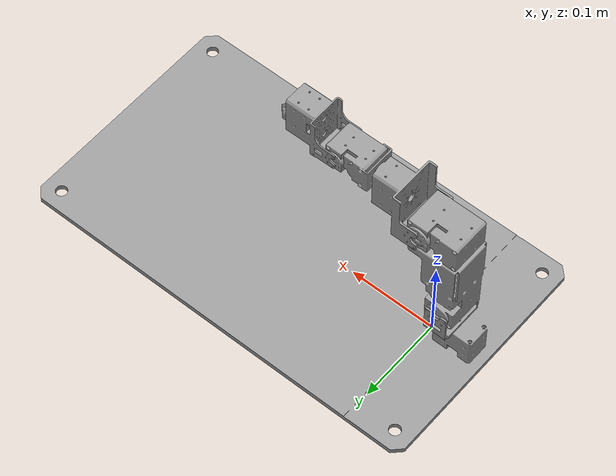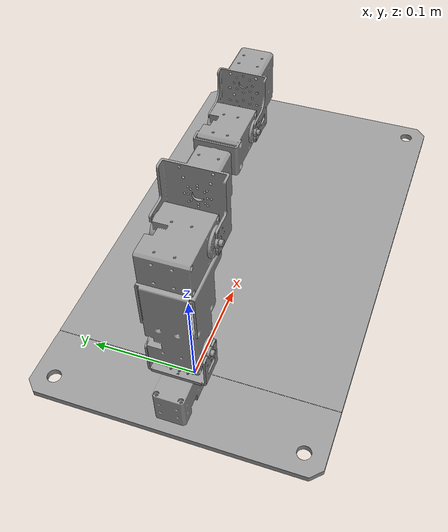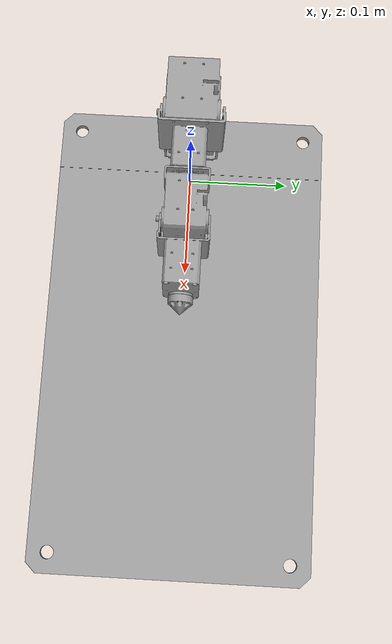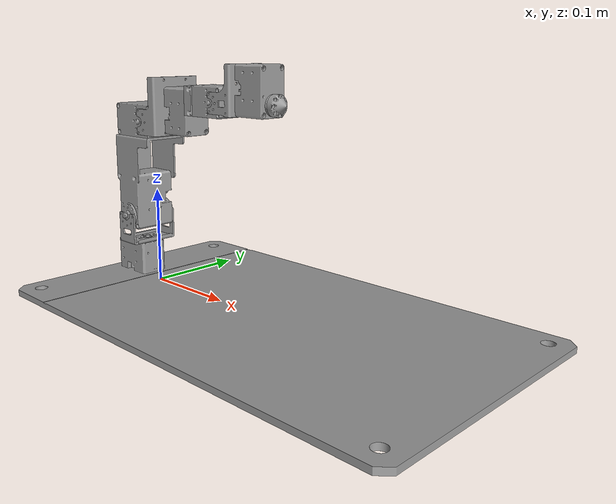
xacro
<?xml version="1.0"?>
<!-- ROBOTIS Manipulator-X -->
<robot name="robotis_manipulator_x" xmlns:xacro="http://www.ros.org/wiki/xacro">

  <!-- some parameters -->
  <xacro:property name="pi" value="3.141592654" />

  <!-- Import all Gazebo-customization elements, including Gazebo colors -->
  <xacro:include filename="$(find manipulator_x_description)/urdf/manipulator_x.gazebo" />
  <!-- Import Rviz colors -->
  <xacro:include filename="$(find manipulator_x_description)/urdf/materials.xacro" />

  <!-- World -->
  <link name="world">
  </link>

  <!-- World fixed joint-->
  <joint name="world_fixed" type="fixed">
    <origin xyz="0 0 0" rpy="0 0 0"/>
    <parent link="world"/>
    <child link="base"/>
  </joint>

  <!-- Base Plate -->
  <link name="base">
    <collision>
      <origin xyz="0 0 0" rpy="0 0 ${-0.5*pi}"/>
      <geometry>
        <mesh filename="package://manipulator_x_description/meshes/assm_mpx540_6x_base.stl" scale="0.001 0.001 0.001"/>
      </geometry>
    </collision>

    <visual>
      <origin xyz="0 0 0" rpy="0 0 ${-0.5*pi}"/>
      <geometry>
        <mesh filename="package://manipulator_x_description/meshes/assm_mpx540_6x_base.stl" scale="0.001 0.001 0.001"/>
      </geometry>
      <material name="grey"/>
    </visual>

    <inertial>
      <origin xyz="0 0 0" rpy="0 0 0"/>
      <mass value="1.0"/>
      <inertia ixx="1.0" ixy="0.0" ixz="0" iyy="1.0" iyz="0.0" izz="1.0" />
    </inertial>
  </link>

  <!-- Joint 1 -->
  <joint name="joint1" type="revolute">
    <parent link="base"/>
    <child link="link2"/>
    <origin xyz="-0.021 0.0 0.023" rpy="0 0 0"/>
    <axis xyz="0 0 1"/>
    <limit velocity="6.5" effort="1000" lower="${-8.0*pi/9.0}" upper="${8.0*pi/9.0}" />
    <dynamics damping="0.1"/>
  </joint>

  <transmission name="tran1">
    <type>transmission_interface/SimpleTransmission</type>
    <joint name="joint1">
      <hardwareInterface>EffortJointInterface</hardwareInterface>
    </joint>
    <actuator name="motor1">
      <hardwareInterface>EffortJointInterface</hardwareInterface>
      <mechanicalReduction>1</mechanicalReduction>
    </actuator>
  </transmission>

  <!-- Link 2 -->
  <link name="link2">
    <collision>
      <origin xyz="0 0 0" rpy="0 0 ${-0.5*pi}"/>
      <geometry>
        <mesh filename="package://manipulator_x_description/meshes/assm_mpx540_6x_0.stl" scale="0.001 0.001 0.001"/>
      </geometry>
    </collision>

    <visual>
      <origin xyz="0 0 0" rpy="0 0 ${-0.5*pi}"/>
      <geometry>
        <mesh filename="package://manipulator_x_description/meshes/assm_mpx540_6x_0.stl" scale="0.001 0.001 0.001"/>
      </geometry>
      <material name="grey"/>
    </visual>

    <inertial>
      <origin xyz="0 0 0" rpy="0 0 0"/>
      <mass value="1.0"/>
      <inertia ixx="1.0" ixy="0.0" ixz="0" iyy="1.0" iyz="0.0" izz="1.0" />
    </inertial>
  </link>

  <!-- Joint 2 -->
  <joint name="joint2" type="revolute">
    <parent link="link2"/>
    <child link="link3"/>
    <origin xyz="0.0 0.0 0.0495" rpy="0 0 0"/>
    <axis xyz="0 1 0"/>
    <limit velocity="6.5" effort="1000" lower="${-8.0*pi/9.0}" upper="${8.0*pi/9.0}" />
    <dynamics damping="0.1"/>
  </joint>

  <transmission name="tran2">
    <type>transmission_interface/SimpleTransmission</type>
    <joint name="joint2">
      <hardwareInterface>EffortJointInterface</hardwareInterface>
    </joint>
    <actuator name="motor2">
      <hardwareInterface>EffortJointInterface</hardwareInterface>
      <mechanicalReduction>1</mechanicalReduction>
    </actuator>
  </transmission>

  <!-- Link 3 -->
  <link name="link3">
    <collision>
      <origin xyz="0 0 0" rpy="${-0.5*pi} 0 ${pi}"/>
      <geometry>
        <mesh filename="package://manipulator_x_description/meshes/assm_mpx540_6x_1.stl" scale="0.001 0.001 0.001"/>
      </geometry>
    </collision>

    <visual>
      <origin xyz="0 0 0" rpy="${-0.5*pi} 0 ${pi}"/>
      <geometry>
        <mesh filename="package://manipulator_x_description/meshes/assm_mpx540_6x_1.stl" scale="0.001 0.001 0.001"/>
      </geometry>
      <material name="grey"/>
    </visual>

    <inertial>
      <origin xyz="0 0 0" rpy="0 0 0"/>
      <mass value="1.0"/>
      <inertia ixx="1.0" ixy="0.0" ixz="0" iyy="1.0" iyz="0.0" izz="1.0" />
    </inertial>
  </link>

  <!-- Joint 3 -->
  <joint name="joint3" type="revolute">
    <parent link="link3"/>
    <child link="link4"/>
    <origin xyz="0.029 0.0 0.102" rpy="0 0 0"/>
    <axis xyz="0 -1 0"/>
    <limit velocity="6.5" effort="1000" lower="${-8.0*pi/9.0}" upper="${8.0*pi/9.0}" />
    <dynamics damping="0.1"/>
  </joint>

  <transmission name="tran3">
    <type>transmission_interface/SimpleTransmission</type>
    <joint name="joint3">
      <hardwareInterface>EffortJointInterface</hardwareInterface>
    </joint>
    <actuator name="motor3">
      <hardwareInterface>EffortJointInterface</hardwareInterface>
      <mechanicalReduction>1</mechanicalReduction>
    </actuator>
  </transmission>

  <!-- Link 4 -->
  <link name="link4">
    <collision>
      <origin xyz="0 0 0" rpy="0 0 ${-0.5*pi}"/>
      <geometry>
        <mesh filename="package://manipulator_x_description/meshes/assm_mpx540_6x_2.stl" scale="0.001 0.001 0.001"/>
      </geometry>
    </collision>

    <visual>
      <origin xyz="0 0 0" rpy="0 0 ${-0.5*pi}"/>
      <geometry>
        <mesh filename="package://manipulator_x_description/meshes/assm_mpx540_6x_2.stl" scale="0.001 0.001 0.001"/>
      </geometry>
      <material name="grey"/>
    </visual>

    <inertial>
      <origin xyz="0 0 0" rpy="0 0 0"/>
      <mass value="1.0"/>
      <inertia ixx="1.0" ixy="0.0" ixz="0" iyy="1.0" iyz="0.0" izz="1.0" />
    </inertial>
  </link>

  <!-- Joint 4 -->
  <joint name="joint4" type="revolute">
    <parent link="link4"/>
    <child link="link5"/>
    <origin xyz="0.045 0.0 0.024" rpy="0 0 0"/>
    <axis xyz="1 0 0"/>
    <limit velocity="6.5" effort="1000" lower="${-8.0*pi/9.0}" upper="${8.0*pi/9.0}" />
    <dynamics damping="0.1"/>
  </joint>

  <transmission name="tran4">
    <type>transmission_interface/SimpleTransmission</type>
    <joint name="joint4">
      <hardwareInterface>EffortJointInterface</hardwareInterface>
    </joint>
    <actuator name="motor4">
      <hardwareInterface>EffortJointInterface</hardwareInterface>
      <mechanicalReduction>1</mechanicalReduction>
    </actuator>
  </transmission>

  <!-- Link 5 -->
  <link name="link5">
    <collision>
      <origin xyz="0 0 0" rpy="0 0 ${-0.5*pi}"/>
      <geometry>
        <mesh filename="package://manipulator_x_description/meshes/assm_mpx540_6x_3.stl" scale="0.001 0.001 0.001"/>
      </geometry>
    </collision>

    <visual>
      <origin xyz="0 0 0" rpy="0 0 ${-0.5*pi}"/>
      <geometry>
        <mesh filename="package://manipulator_x_description/meshes/assm_mpx540_6x_3.stl" scale="0.001 0.001 0.001"/>
      </geometry>
      <material name="grey"/>
    </visual>

    <inertial>
      <origin xyz="0 0 0" rpy="0 0 0"/>
      <mass value="1.0"/>
      <inertia ixx="1.0" ixy="0.0" ixz="0" iyy="1.0" iyz="0.0" izz="1.0" />
    </inertial>
  </link>

  <!-- Joint 5 -->
  <joint name="joint5" type="revolute">
    <parent link="link5"/>
    <child link="link6"/>
    <origin xyz="0.0595 0.0 0.0" rpy="0 0 0"/>
    <axis xyz="0 -1 0"/>
    <limit velocity="6.5" effort="1000" lower="${-8.0*pi/9.0}" upper="${8.0*pi/9.0}" />
    <dynamics damping="0.1"/>
  </joint>

  <transmission name="tran5">
    <type>transmission_interface/SimpleTransmission</type>
    <joint name="joint5">
      <hardwareInterface>EffortJointInterface</hardwareInterface>
    </joint>
    <actuator name="motor5">
      <hardwareInterface>EffortJointInterface</hardwareInterface>
      <mechanicalReduction>1</mechanicalReduction>
    </actuator>
  </transmission>

  <!-- Link 6 -->
  <link name="link6">
    <collision>
      <origin xyz="0 0 0" rpy="0 0 ${-0.5*pi}"/>
      <geometry>
        <mesh filename="package://manipulator_x_description/meshes/assm_mpx540_6x_4.stl" scale="0.001 0.001 0.001"/>
      </geometry>
    </collision>

    <visual>
      <origin xyz="0 0 0" rpy="0 0 ${-0.5*pi}"/>
      <geometry>
        <mesh filename="package://manipulator_x_description/meshes/assm_mpx540_6x_4.stl" scale="0.001 0.001 0.001"/>
      </geometry>
      <material name="grey"/>
    </visual>

    <inertial>
      <origin xyz="0 0 0" rpy="0 0 0"/>
      <mass value="1.0"/>
      <inertia ixx="1.0" ixy="0.0" ixz="0" iyy="1.0" iyz="0.0" izz="1.0" />
    </inertial>
  </link>

  <!-- Joint 6 -->
  <joint name="joint6" type="revolute">
    <parent link="link6"/>
    <child link="link7"/>
    <origin xyz="0.045 0.0 0.0" rpy="0 0 0"/>
    <axis xyz="1 0 0"/>
    <limit velocity="6.5" effort="1000" lower="${-8.0*pi/9.0}" upper="${8.0*pi/9.0}" />
    <dynamics damping="0.1"/>
  </joint>

  <transmission name="tran6">
    <type>transmission_interface/SimpleTransmission</type>
    <joint name="joint6">
      <hardwareInterface>EffortJointInterface</hardwareInterface>
    </joint>
    <actuator name="motor6">
      <hardwareInterface>EffortJointInterface</hardwareInterface>
      <mechanicalReduction>1</mechanicalReduction>
    </actuator>
  </transmission>

  <!-- Link 7 -->
  <link name="link7">
    <collision>
      <origin xyz="0 0 0" rpy="0 0 ${-0.5*pi}"/>
      <geometry>
        <mesh filename="package://manipulator_x_description/meshes/assm_mpx540_6x_5.stl" scale="0.001 0.001 0.001"/>
      </geometry>
    </collision>

    <visual>
      <origin xyz="0 0 0" rpy="0 0 ${-0.5*pi}"/>
      <geometry>
        <mesh filename="package://manipulator_x_description/meshes/assm_mpx540_6x_5.stl" scale="0.001 0.001 0.001"/>
      </geometry>
      <material name="grey"/>
    </visual>

    <inertial>
      <origin xyz="0 0 0" rpy="0 0 0"/>
      <mass value="1.0"/>
      <inertia ixx="1.0" ixy="0.0" ixz="0" iyy="1.0" iyz="0.0" izz="1.0" />
    </inertial>
  </link>

</robot>
